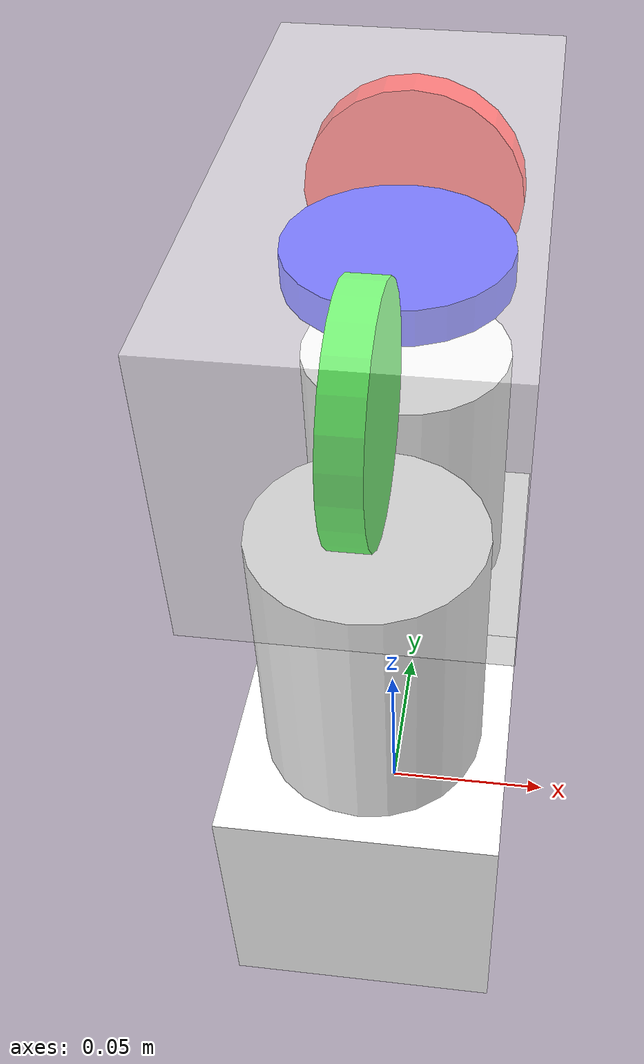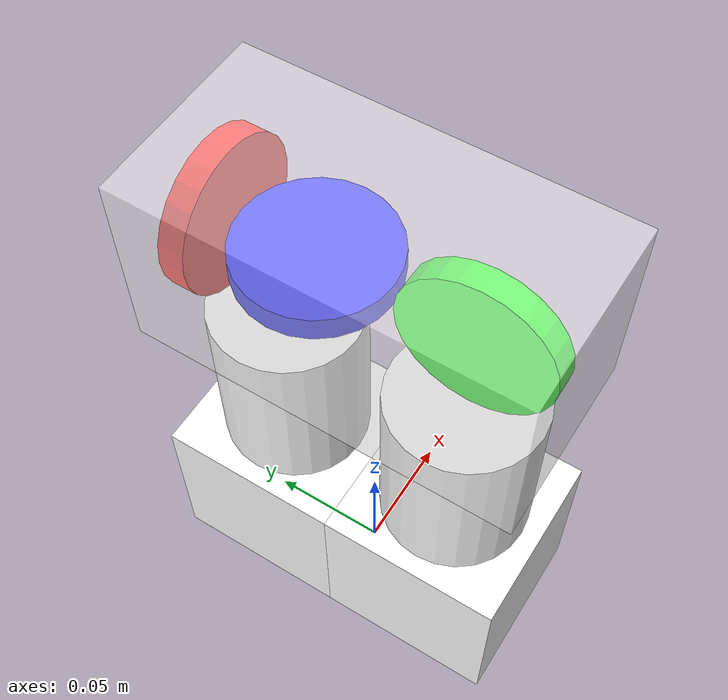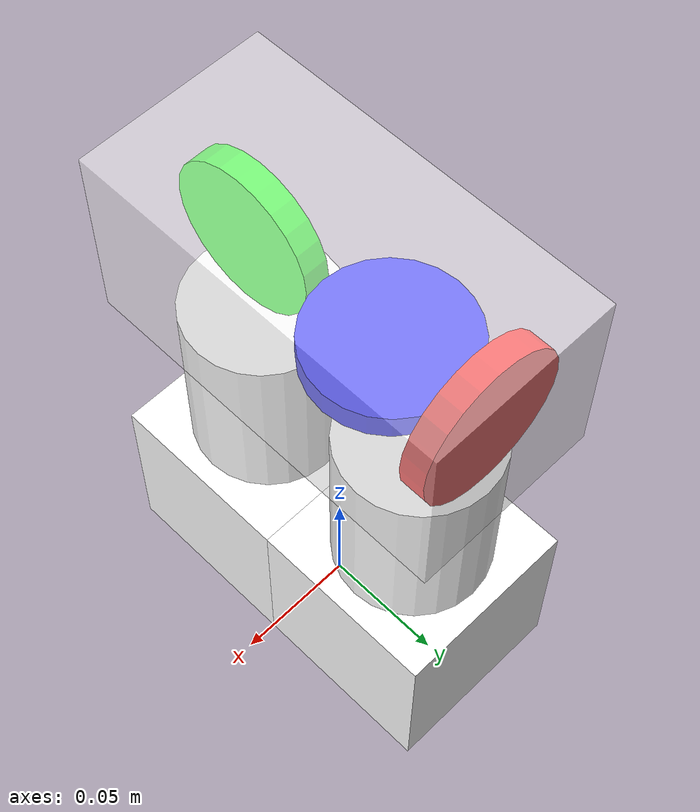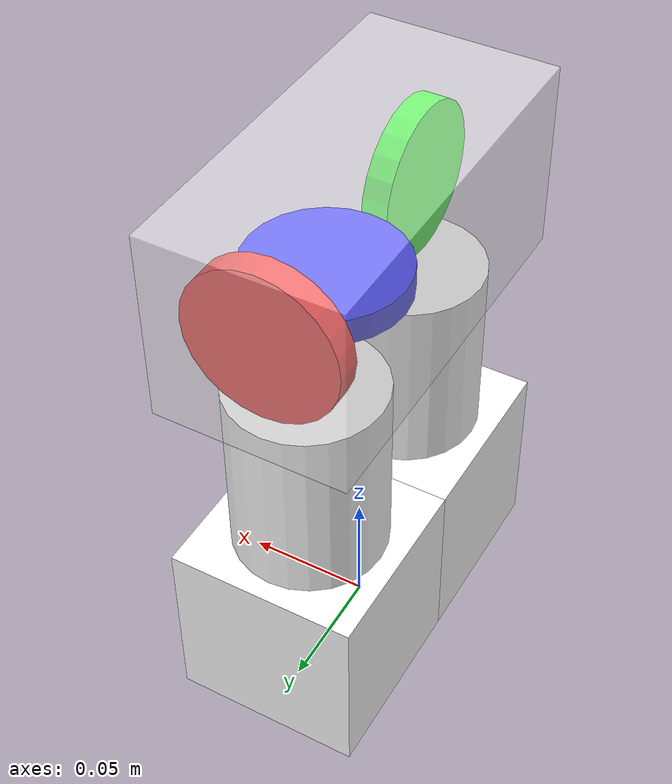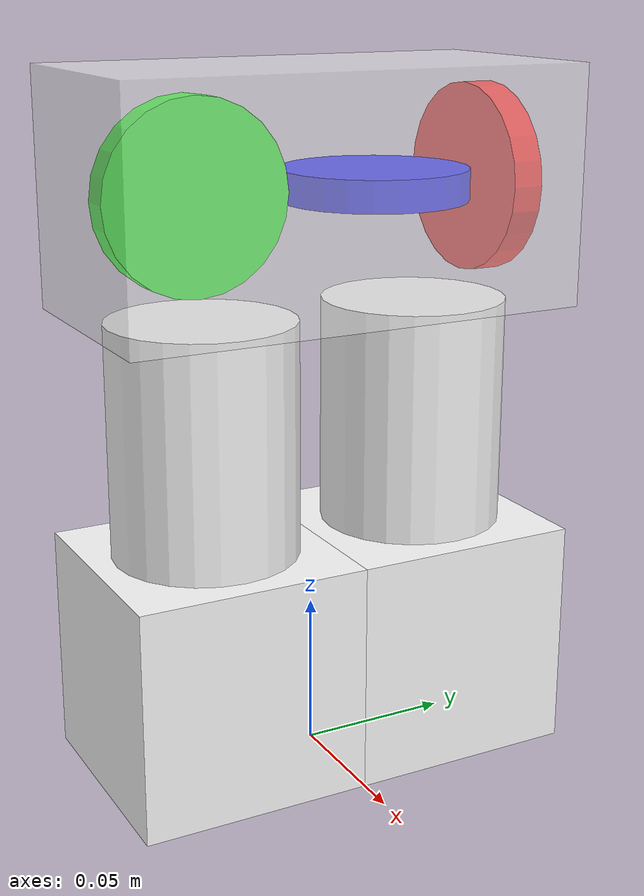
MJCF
<mujoco model="rwrl">
	<compiler angle="degree" coordinate="global" inertiafromgeom="true"/>
	<default>
		<joint armature=".1" damping=".01" limited="true" solimplimit="0 .8 .03" solreflimit=".02 1" stiffness="8"/>
		<geom conaffinity="0" condim="3" contype="1" friction="0.8 .1 .1" rgba="0.8 0.6 .4 1" solimp="0.0 0.8 0.01" solref="0.02 1"/>
		<motor ctrllimited="true" ctrlrange="-1 1"/>
	</default>
	<option gravity="0 0 -9.81" timestep="0.01"/>
	<worldbody>
		<body name="torso">
			<joint armature="0" axis="1 0 0" damping="0" limited="false" name="ignorex" pos="0 0 0" stiffness="0" type="slide"/>
			<joint armature="0" axis="0 0 1" damping="0" limited="false" name="ignorez" pos="0 0 0" stiffness="0" type="slide"/>
			<joint armature="0" axis="0 1 0" damping="0" limited="false" name="ignorey" pos="0 0 0" stiffness="0" type="hinge"/>
			<geom type="box" pos="0 0 .1875" size=".0375 .075 .0375" rgba="1 1 1 .5"/>
			<inertial mass=".5"/>
			<body name="x_wheel">
				<geom type="cylinder" fromto=".005 -.04 .1875 -.005 -.04 .1875" size=".03" rgba="0 1 0 1"/>
				<inertial mass=".2"/>
				<joint name="x_joint" type="hinge" pos="0 -.04 .1875" axis="1 0 0" limited="false"/>
			</body>

			<body name="y_wheel">
				<geom type="cylinder" fromto="0 .065 .1875 0 .055 .1875" size=".03" rgba="1 0 0 1"/>
				<inertial mass=".2"/>
				<joint name="y_joint" type="hinge" pos="0 .06 .1875" axis="0 1 0" limited="false"/>
			</body>

			<body name="z_wheel">
				<geom type="cylinder" fromto="0 .0225 .1925 0 .0225 .1825" size=".03" rgba="0 0 1 1"/>
				<inertial mass=".2"/>
				<joint name="z_joint" type="hinge" pos="0 .0225 .18755" axis="0 0 1" limited="false"/>
			</body>

			<body name="left_leg">
				<geom type="cylinder" fromto="0 -.0375 .15 0 -.0375 .0375" size=".03" rgba="1 1 1 1"/>
				<inertial mass=".4"/>
				<joint name="left_joint" type="hinge" pos="0 -.0375 .15" axis="0 -1 0" range="-60 60" damping="5"/>

				<geom type="box" pos="0 -.0375 .0375" size=".0375 .0375 .0375" rgba="1 1 1 1"/>
				<inertial mass=".1"/>
			</body>

			<body name="right_leg">
				<geom type="cylinder" fromto="0 .0375 .15 0 .0375 .0375" size=".03" rgba="1 1 1 1"/>
				<inertial mass=".4"/>
				<joint name="right_joint" type="hinge" pos="0 .0375 .15" axis="0 -1 0" range="-60 60" damping="5"/>

				<geom type="box" pos="0 .0375 .0375" size=".0375 .0375 .0375" rgba="1 1 1 1"/>
				<inertial mass=".1"/>
			</body>

		</body>
	</worldbody>
	<actuator>
		<motor ctrllimited="true" gear="200.0" joint="x_joint" name="x_joint"/>
		<motor ctrllimited="true" gear="200.0" joint="y_joint" name="y_joint"/>
		<motor ctrllimited="true" gear="200.0" joint="z_joint" name="z_joint"/>
		<motor ctrllimited="true" gear="100" joint="left_joint" name="left_joint"/>
		<motor ctrllimited="true" gear="100" joint="right_joint" name="right_joint"/>
	</actuator>
</mujoco>
